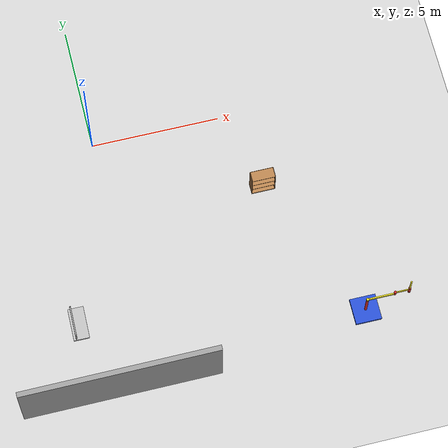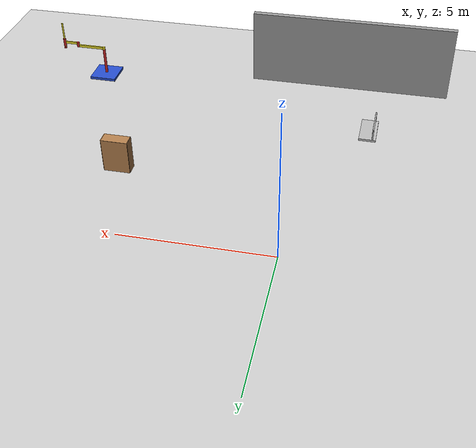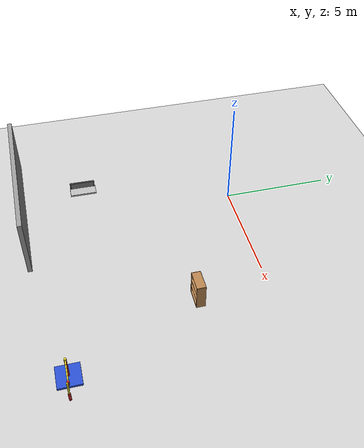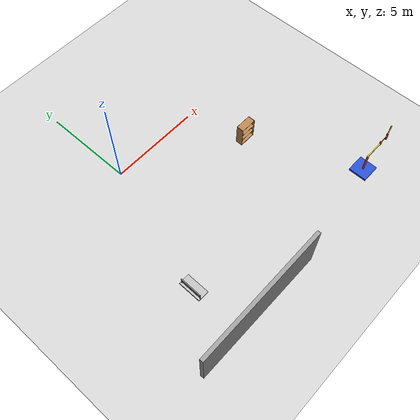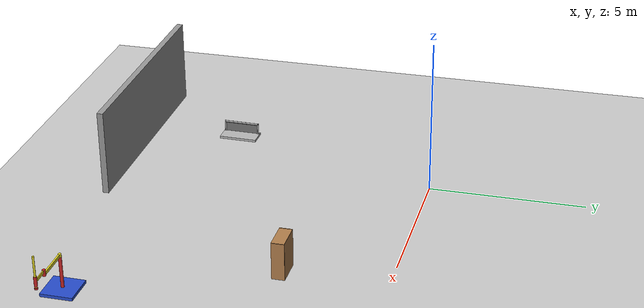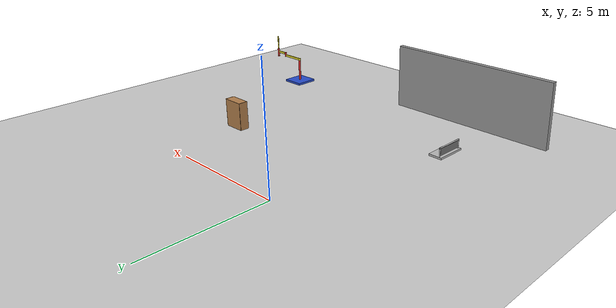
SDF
<sdf version="1.4">
 <world name="default">
  <model name="ground_plane">
   <static>1</static>
   <link name="link">
    <collision name="collision">
     <geometry><plane><normal>0 0 1</normal><size>100 100</size></plane></geometry>
     <surface><friction><ode><mu>100</mu><mu2>50</mu2></ode></friction></surface>
    </collision>
    <visual name="visual">
     <cast_shadows>0</cast_shadows>
     <geometry><plane><normal>0 0 1</normal><size>100 100</size></plane></geometry>
     <material>
      <script><uri>file://media/materials/scripts/gazebo.material</uri><name>Gazebo/Grey</name></script>
     </material>
    </visual>
    <velocity_decay><linear>0</linear><angular>0</angular></velocity_decay>
   </link>
  </model>
  <model name="grey_wall_1">
   <static>1</static>
   <link name="link">
    <pose>0 0 1.4 0 -0 0</pose>
    <collision name="collision"><geometry><box><size>7.5 0.2 2.8</size></box></geometry></collision>
    <visual name="visual">
     <cast_shadows>0</cast_shadows>
     <geometry><box><size>7.5 0.2 2.8</size></box></geometry>
     <material>
      <script>
       <uri>model://grey_wall/materials/scripts</uri>
       <uri>model://grey_wall/materials/textures</uri>
       <name>vrc/grey_wall</name>
      </script>
     </material>
    </visual>
    <velocity_decay><linear>0</linear><angular>0</angular></velocity_decay>
   </link>
   <pose>-1 -10 0 0 -0 0</pose>
  </model>
  <model name="simple_arm">
   <link name="arm_base">
    <inertial>
     <pose>0 0 0.00099 0 -0 0</pose>
     <inertia><ixx>1.11</ixx><ixy>0</ixy><ixz>0</ixz><iyy>100.11</iyy><iyz>0</iyz><izz>1.01</izz></inertia>
     <mass>101</mass>
    </inertial>
    <collision name="arm_base_geom">
     <pose>0 0 0.05 0 -0 0</pose>
     <geometry><box><size>1 1 0.1</size></box></geometry>
    </collision>
    <visual name="arm_base_geom_visual">
     <pose>0 0 0.05 0 -0 0</pose>
     <geometry><box><size>1 1 0.1</size></box></geometry>
     <material>
      <script><uri>file://media/materials/scripts/gazebo.material</uri><name>Gazebo/Blue</name></script>
     </material>
    </visual>
    <collision name="arm_base_geom_arm_trunk">
     <pose>0 0 0.6 0 -0 0</pose>
     <geometry><cylinder><radius>0.05</radius><length>1</length></cylinder></geometry>
    </collision>
    <visual name="arm_base_geom_arm_trunk_visual">
     <pose>0 0 0.6 0 -0 0</pose>
     <geometry><cylinder><radius>0.05</radius><length>1</length></cylinder></geometry>
     <material>
      <script><uri>file://media/materials/scripts/gazebo.material</uri><name>Gazebo/Red</name></script>
     </material>
    </visual>
    <velocity_decay><linear>0</linear><angular>0</angular></velocity_decay>
   </link>
   <link name="arm_shoulder_pan">
    <pose>0 0 1.1 0 -0 0</pose>
    <inertial>
     <pose>0.045455 0 0 0 -0 0</pose>
     <inertia><ixx>0.011</ixx><ixy>0</ixy><ixz>0</ixz><iyy>0.0225</iyy><iyz>0</iyz><izz>0.0135</izz></inertia>
     <mass>1.1</mass>
    </inertial>
    <collision name="arm_shoulder_pan_geom">
     <pose>0 0 0.05 0 -0 0</pose>
     <geometry><cylinder><radius>0.05</radius><length>0.1</length></cylinder></geometry>
    </collision>
    <visual name="arm_shoulder_pan_geom_visual">
     <pose>0 0 0.05 0 -0 0</pose>
     <geometry><cylinder><radius>0.05</radius><length>0.1</length></cylinder></geometry>
     <material>
      <script><uri>file://media/materials/scripts/gazebo.material</uri><name>Gazebo/Yellow</name></script>
     </material>
    </visual>
    <collision name="arm_shoulder_pan_geom_arm_shoulder">
     <pose>0.55 0 0.05 0 -0 0</pose>
     <geometry><box><size>1 0.05 0.1</size></box></geometry>
    </collision>
    <visual name="arm_shoulder_pan_geom_arm_shoulder_visual">
     <pose>0.55 0 0.05 0 -0 0</pose>
     <geometry><box><size>1 0.05 0.1</size></box></geometry>
     <material>
      <script><uri>file://media/materials/scripts/gazebo.material</uri><name>Gazebo/Yellow</name></script>
     </material>
    </visual>
    <velocity_decay><linear>0</linear><angular>0</angular></velocity_decay>
   </link>
   <link name="arm_elbow_pan">
    <pose>1.05 0 1.1 0 -0 0</pose>
    <inertial>
     <pose>0.0875 0 0.083333 0 -0 0</pose>
     <inertia>
      <ixx>0.031</ixx>
      <ixy>0</ixy>
      <ixz>0.005</ixz>
      <iyy>0.07275</iyy>
      <iyz>0</iyz>
      <izz>0.04475</izz>
     </inertia>
     <mass>1.2</mass>
    </inertial>
    <collision name="arm_elbow_pan_geom">
     <pose>0 0 0.1 0 -0 0</pose>
     <geometry><cylinder><radius>0.05</radius><length>0.2</length></cylinder></geometry>
    </collision>
    <visual name="arm_elbow_pan_geom_visual">
     <pose>0 0 0.1 0 -0 0</pose>
     <geometry><cylinder><radius>0.05</radius><length>0.2</length></cylinder></geometry>
     <material>
      <script><uri>file://media/materials/scripts/gazebo.material</uri><name>Gazebo/Red</name></script>
     </material>
    </visual>
    <collision name="arm_elbow_pan_geom_arm_elbow">
     <pose>0.3 0 0.15 0 -0 0</pose>
     <geometry><box><size>0.5 0.03 0.1</size></box></geometry>
    </collision>
    <visual name="arm_elbow_pan_geom_arm_elbow_visual">
     <pose>0.3 0 0.15 0 -0 0</pose>
     <geometry><box><size>0.5 0.03 0.1</size></box></geometry>
     <material>
      <script><uri>file://media/materials/scripts/gazebo.material</uri><name>Gazebo/Yellow</name></script>
     </material>
    </visual>
    <collision name="arm_elbow_pan_geom_arm_wrist">
     <pose>0.55 0 0.15 0 -0 0</pose>
     <geometry><cylinder><radius>0.05</radius><length>0.3</length></cylinder></geometry>
    </collision>
    <visual name="arm_elbow_pan_geom_arm_wrist_visual">
     <pose>0.55 0 0.15 0 -0 0</pose>
     <geometry><cylinder><radius>0.05</radius><length>0.3</length></cylinder></geometry>
     <material>
      <script><uri>file://media/materials/scripts/gazebo.material</uri><name>Gazebo/Red</name></script>
     </material>
    </visual>
    <velocity_decay><linear>0</linear><angular>0</angular></velocity_decay>
   </link>
   <link name="arm_wrist_lift">
    <pose>1.6 0 1.05 0 -0 0</pose>
    <inertial>
     <inertia><ixx>0.01</ixx><ixy>0</ixy><ixz>0</ixz><iyy>0.01</iyy><iyz>0</iyz><izz>0.001</izz></inertia>
     <mass>0.1</mass>
    </inertial>
    <collision name="arm_wrist_lift_geom">
     <pose>0 0 0.5 0 -0 0</pose>
     <geometry><cylinder><radius>0.03</radius><length>1</length></cylinder></geometry>
    </collision>
    <visual name="arm_wrist_lift_geom_visual">
     <pose>0 0 0.5 0 -0 0</pose>
     <geometry><cylinder><radius>0.03</radius><length>1</length></cylinder></geometry>
     <material>
      <script><uri>file://media/materials/scripts/gazebo.material</uri><name>Gazebo/Yellow</name></script>
     </material>
    </visual>
    <velocity_decay><linear>0</linear><angular>0</angular></velocity_decay>
   </link>
   <link name="arm_wrist_roll">
    <pose>1.6 0 1 0 -0 0</pose>
    <inertial>
     <inertia><ixx>0.01</ixx><ixy>0</ixy><ixz>0</ixz><iyy>0.01</iyy><iyz>0</iyz><izz>0.001</izz></inertia>
     <mass>0.1</mass>
    </inertial>
    <collision name="arm_wrist_roll_geom">
     <pose>0 0 0.025 0 -0 0</pose>
     <geometry><cylinder><radius>0.05</radius><length>0.05</length></cylinder></geometry>
    </collision>
    <visual name="arm_wrist_roll_geom_visual">
     <pose>0 0 0.025 0 -0 0</pose>
     <geometry><cylinder><radius>0.05</radius><length>0.05</length></cylinder></geometry>
     <material>
      <script><uri>file://media/materials/scripts/gazebo.material</uri><name>Gazebo/Red</name></script>
     </material>
    </visual>
    <velocity_decay><linear>0</linear><angular>0</angular></velocity_decay>
   </link>
   <joint name="arm_shoulder_pan_joint" type="revolute">
    <parent>arm_base</parent>
    <child>arm_shoulder_pan</child>
    <axis>
     <dynamics><damping>1</damping><friction>0</friction></dynamics>
     <xyz>0 0 1</xyz>
     <limit><lower>-1e+16</lower><upper>1e+16</upper></limit>
    </axis>
   </joint>
   <joint name="arm_elbow_pan_joint" type="revolute">
    <parent>arm_shoulder_pan</parent>
    <child>arm_elbow_pan</child>
    <axis>
     <dynamics><damping>1</damping><friction>0</friction></dynamics>
     <xyz>0 0 1</xyz>
     <limit><lower>-1e+16</lower><upper>1e+16</upper></limit>
    </axis>
   </joint>
   <joint name="arm_wrist_lift_joint" type="prismatic">
    <parent>arm_elbow_pan</parent>
    <child>arm_wrist_lift</child>
    <axis>
     <dynamics><damping>1</damping><friction>0</friction></dynamics>
     <limit><lower>-0.8</lower><upper>0.1</upper></limit>
     <xyz>0 0 1</xyz>
    </axis>
   </joint>
   <joint name="arm_wrist_roll_joint" type="revolute">
    <parent>arm_wrist_lift</parent>
    <child>arm_wrist_roll</child>
    <axis>
     <dynamics><damping>1</damping><friction>0</friction></dynamics>
     <limit><lower>-2.99999</lower><upper>2.99999</upper></limit>
     <xyz>0 0 1</xyz>
    </axis>
   </joint>
   <pose>8.53661 -8.98258 0.049845 0.000317 4e-06 -0.004115</pose>
   <static>0</static>
  </model>
  <model name="frc2016_lowbar">
   <link name="base">
    <inertial>
     <mass>50</mass>
     <inertia>
      <ixx>0.035543</ixx>
      <ixy>0</ixy>
      <ixz>0</ixz>
      <iyy>0.134412</iyy>
      <iyz>0</iyz>
      <izz>0.165376</izz>
     </inertia>
    </inertial>
    <visual name="platform">
     <pose>0 0 0.039065 0 -0 0</pose>
     <geometry><box><size>1.26 0.5996 0.07813</size></box></geometry>
    </visual>
    <collision name="platform">
     <pose>0 0 0.039065 0 -0 0</pose>
     <geometry><box><size>1.27 0.6096 0.07813</size></box></geometry>
    </collision>
    <visual name="right_column">
     <pose>-0.57845 -0.18464 0.26863 0 -0 0</pose>
     <geometry><cylinder><radius>0.0254</radius><length>0.381</length></cylinder></geometry>
    </visual>
    <collision name="right_column">
     <pose>-0.57845 -0.18464 0.26863 0 -0 0</pose>
     <geometry><cylinder><radius>0.0254</radius><length>0.381</length></cylinder></geometry>
    </collision>
    <visual name="left_column">
     <pose>0.57845 -0.18464 0.26863 0 -0 0</pose>
     <geometry><cylinder><radius>0.0254</radius><length>0.381</length></cylinder></geometry>
    </visual>
    <collision name="left_column">
     <pose>0.57845 -0.18464 0.26863 0 -0 0</pose>
     <geometry><cylinder><radius>0.0254</radius><length>0.381</length></cylinder></geometry>
    </collision>
    <visual name="horizontal">
     <pose>0 -0.18464 0.43556 0 1.5707 0</pose>
     <geometry><cylinder><radius>0.0254</radius><length>1.2018</length></cylinder></geometry>
    </visual>
    <collision name="horizontal">
     <pose>0 -0.18464 0.43556 0 1.5707 0</pose>
     <geometry><cylinder><radius>0.0254</radius><length>1.2018</length></cylinder></geometry>
    </collision>
    <velocity_decay><linear>0</linear><angular>0</angular></velocity_decay>
   </link>
   <link name="wall">
    <pose>0 -0.1778 0.24323 0 -0 0</pose>
    <inertial>
     <mass>1</mass>
     <inertia>
      <ixx>0.00774528</ixx>
      <ixy>0</ixy>
      <ixz>0</ixz>
      <iyy>0.116613</iyy>
      <iyz>0</iyz>
      <izz>0.108874</izz>
     </inertia>
    </inertial>
    <visual name="visual">
     <geometry><box><size>1.1176 0.00635 0.3</size></box></geometry>
     <material><ambient>0.46 0.46 0.46 1</ambient><diffuse>0.46 0.46 0.46 1</diffuse></material>
    </visual>
    <collision name="collision"><geometry><box><size>1.143 0.00635 0.3</size></box></geometry></collision>
    <velocity_decay><linear>0</linear><angular>0</angular></velocity_decay>
   </link>
   <joint name="bar_joint" type="revolute">
    <pose>0 0 0.36378 0 -0 0</pose>
    <parent>base</parent>
    <child>wall</child>
    <axis><xyz>1 0 0</xyz><limit><lower>-1.5707</lower><upper>1.5707</upper></limit></axis>
   </joint>
   <pose>-2.0376 -6.99169 0.049985 -1.69407e-21 2.3e-05 -1.58566</pose>
   <static>0</static>
  </model>
  <model name="bookshelf">
   <static>1</static>
   <link name="link">
    <inertial><mass>1</mass></inertial>
    <collision name="back">
     <pose>0 0.005 0.6 0 -0 0</pose>
     <geometry><box><size>0.9 0.01 1.2</size></box></geometry>
    </collision>
    <visual name="visual1">
     <pose>0 0.005 0.6 0 -0 0</pose>
     <geometry><box><size>0.9 0.01 1.2</size></box></geometry>
     <material>
      <script><uri>file://media/materials/scripts/gazebo.material</uri><name>Gazebo/Wood</name></script>
     </material>
    </visual>
    <collision name="left_side">
     <pose>0.45 -0.195 0.6 0 -0 0</pose>
     <geometry><box><size>0.02 0.4 1.2</size></box></geometry>
    </collision>
    <visual name="visual2">
     <pose>0.45 -0.195 0.6 0 -0 0</pose>
     <geometry><box><size>0.02 0.4 1.2</size></box></geometry>
     <material>
      <script><uri>file://media/materials/scripts/gazebo.material</uri><name>Gazebo/Wood</name></script>
     </material>
    </visual>
    <collision name="right_side">
     <pose>-0.45 -0.195 0.6 0 -0 0</pose>
     <geometry><box><size>0.02 0.4 1.2</size></box></geometry>
    </collision>
    <visual name="visual3">
     <pose>-0.45 -0.195 0.6 0 -0 0</pose>
     <geometry><box><size>0.02 0.4 1.2</size></box></geometry>
     <material>
      <script><uri>file://media/materials/scripts/gazebo.material</uri><name>Gazebo/Wood</name></script>
     </material>
    </visual>
    <collision name="bottom">
     <pose>0 -0.195 0.03 0 -0 0</pose>
     <geometry><box><size>0.88 0.4 0.06</size></box></geometry>
    </collision>
    <visual name="visual4">
     <pose>0 -0.195 0.03 0 -0 0</pose>
     <geometry><box><size>0.88 0.4 0.06</size></box></geometry>
     <material>
      <script><uri>file://media/materials/scripts/gazebo.material</uri><name>Gazebo/Wood</name></script>
     </material>
    </visual>
    <collision name="top">
     <pose>0 -0.195 1.19 0 -0 0</pose>
     <geometry><box><size>0.88 0.4 0.02</size></box></geometry>
    </collision>
    <visual name="visual5">
     <pose>0 -0.195 1.19 0 -0 0</pose>
     <geometry><box><size>0.88 0.4 0.02</size></box></geometry>
     <material>
      <script><uri>file://media/materials/scripts/gazebo.material</uri><name>Gazebo/Wood</name></script>
     </material>
    </visual>
    <collision name="low_shelf">
     <pose>0 -0.195 0.43 0 -0 0</pose>
     <geometry><box><size>0.88 0.4 0.02</size></box></geometry>
    </collision>
    <visual name="visual6">
     <pose>0 -0.195 0.43 0 -0 0</pose>
     <geometry><box><size>0.88 0.4 0.02</size></box></geometry>
     <material>
      <script><uri>file://media/materials/scripts/gazebo.material</uri><name>Gazebo/Wood</name></script>
     </material>
    </visual>
    <collision name="high_shelf">
     <pose>0 -0.195 0.8 0 -0 0</pose>
     <geometry><box><size>0.88 0.4 0.02</size></box></geometry>
    </collision>
    <visual name="visual7">
     <pose>0 -0.195 0.8 0 -0 0</pose>
     <geometry><box><size>0.88 0.4 0.02</size></box></geometry>
     <material>
      <script><uri>file://media/materials/scripts/gazebo.material</uri><name>Gazebo/Wood</name></script>
     </material>
    </visual>
    <velocity_decay><linear>0</linear><angular>0</angular></velocity_decay>
   </link>
   <pose>6 -3 0 0 -0 0</pose>
  </model>
 </world>
</sdf>
